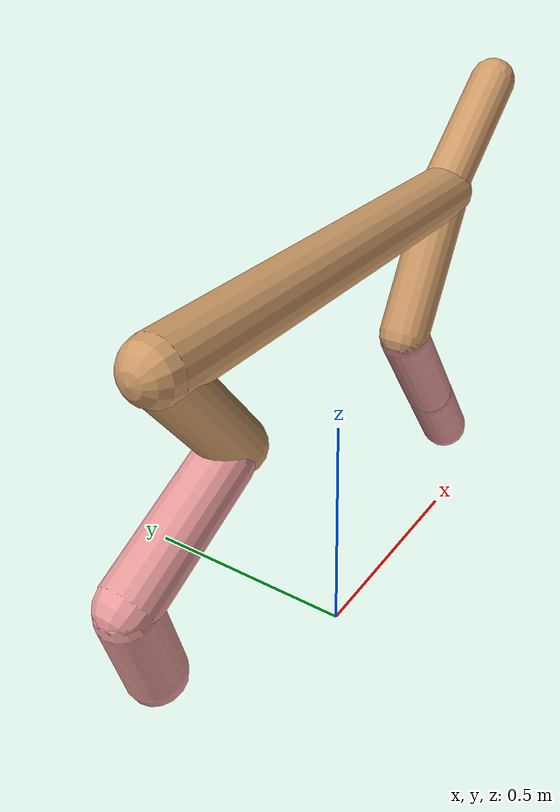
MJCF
<mujoco model="cheetah">
  <compiler angle="radian" coordinate="local" inertiafromgeom="true" settotalmass="14" />
  <default>
    <joint armature=".1" damping=".01" limited="true" solimplimit="0 .8 .03" solreflimit=".02 1" stiffness="8" />
    <geom conaffinity="0" condim="3" contype="1" friction="0.8 .1 .1" rgba="0.8 0.6 .4 1" solimp="0.0 0.8 0.01" solref="0.02 1" />
    <motor ctrllimited="true" ctrlrange="-1 1" />
  </default>
  <size nstack="300000" nuser_geom="1" />
  <option gravity="0 0 -9.81" timestep="0.01" />
  <worldbody>
    <body name="torso" pos="0.0 0.0 0.8712522062894019">
      <joint armature="0" axis="1 0 0" damping="0" limited="false" name="ignorex" pos="0 0 0" stiffness="0" type="slide" />
      <joint armature="0" axis="0 0 1" damping="0" limited="false" name="ignorez" pos="0 0 0" stiffness="0" type="slide" />
      <joint armature="0" axis="0 1 0" damping="0" limited="false" name="ignorey" pos="0 0 0" stiffness="0" type="hinge" />
      <geom fromto="-0.5 0.0 0.0 0.4289710828133791 0.0 0.0" name="torso" size="0.058994572691030644" type="capsule" />
      <geom axisangle="0 1 0 .87" name="head" pos="0.528971082813379 0.0 0.1" size="0.0498185088682853 0.15" type="capsule" />

      <body name="bthigh" pos="-.5 0 0">
        <joint axis="0 1 0" damping="6" name="bthigh" pos="0 0 0" range="-.52 1.05" stiffness="240" type="hinge" />
        <geom axisangle="0 1 0 -3.8" name="bthigh" pos="0.09291088877572838 0.0 -0.12078415540844689" size="0.053470372729816126 0.13337299309857636" type="capsule" />
        <body name="bshin" pos="0.14582177755145675 0.0 -0.23156831081689377">
          <joint axis="0 1 0" damping="4.5" name="bshin" pos="0 0 0" range="-.785 .785" stiffness="180" type="hinge" />
          <geom axisangle="0 1 0 -2.03" name="bshin" pos="-0.12924188504561004 0.0 -0.06462094252280502" rgba="0.9 0.6 0.6 1" size="0.053470372729816126 0.1379720618261135" type="capsule" />
          <body name="bfoot" pos="-0.2584837700912201 0.0 -0.12924188504561004">
            <joint axis="0 1 0" damping="3" name="bfoot" pos="0 0 0" range="-.4 .785" stiffness="120" type="hinge" />
            <geom axisangle="0 1 0 -.27" name="bfoot" pos="0.027772894622674474 0.0 -0.08979902594664747" rgba="0.9 0.6 0.6 1" size="0.053470372729816126 0.0864624920776978" type="capsule" />
            <inertial mass="10" />
          </body>
        </body>
      </body>
      <body name="fthigh" pos="0.42897108281337903 0.0 0.0">
        <joint axis="0 1 0" damping="4.5" name="fthigh" pos="0 0 0" range="-1.5 0.8" stiffness="180" type="hinge" />
        <geom axisangle="0 1 0 .52" name="fthigh" pos="-0.08200464466447525 0.0 -0.14057939085338614" size="0.05400010712035665 0.15682483623063856" type="capsule" />
        <body name="fshin" pos="-0.1640092893289505 0.0 -0.2811587817067723">
          <joint axis="0 1 0" damping="3" name="fshin" pos="0 0 0" range="-1.2 1.1" stiffness="120" type="hinge" />
          <geom axisangle="0 1 0 -.6" name="fshin" pos="0.07611742071693486 0.0 -0.10539335176190981" rgba="0.9 0.6 0.6 1" size="0.05400010712035665 0.12498821534171192" type="capsule" />
          <body name="ffoot" pos="0.15223484143386973 0.0 -0.21078670352381962">
            <joint axis="0 1 0" damping="1.5" name="ffoot" pos="0 0 0" range="-3.1 -0.3" stiffness="60" type="hinge" />
            <geom axisangle="0 1 0 -.6" name="ffoot" pos="0.05178076897553614 0.0 -0.08054786285083401" rgba="0.9 0.6 0.6 1" size="0.05400010712035665 0.08253938748980977" type="capsule" />
            <inertial mass="10" />
          </body>
        </body>
      </body>
    </body>
  </worldbody>
  <actuator>
    <motor gear="120" joint="bthigh" name="bthigh" />
    <motor gear="90" joint="bshin" name="bshin" />
    <motor gear="60" joint="bfoot" name="bfoot" />
    <motor gear="120" joint="fthigh" name="fthigh" />
    <motor gear="60" joint="fshin" name="fshin" />
    <motor gear="30" joint="ffoot" name="ffoot" />
  </actuator>
</mujoco>
